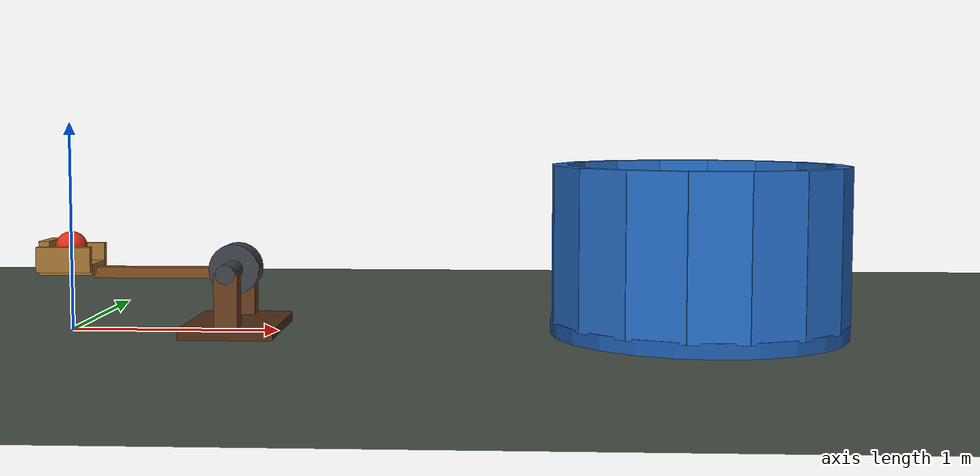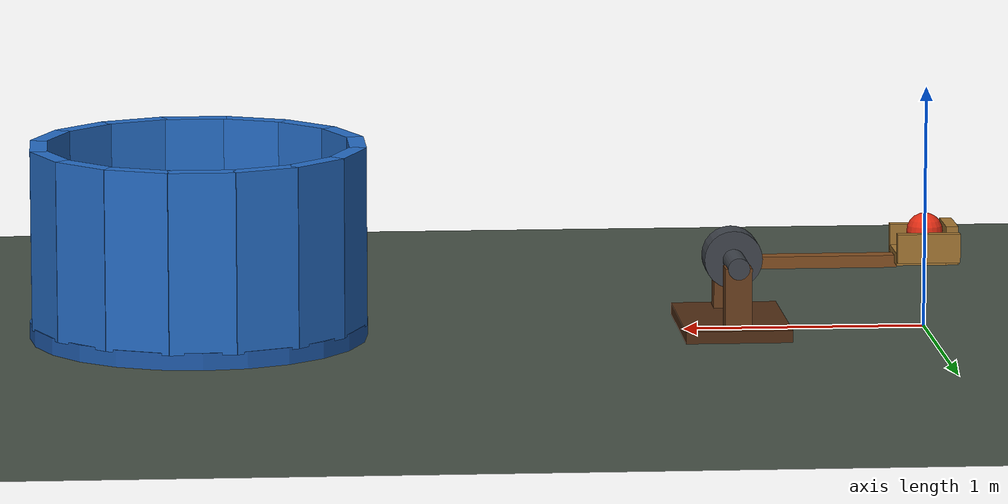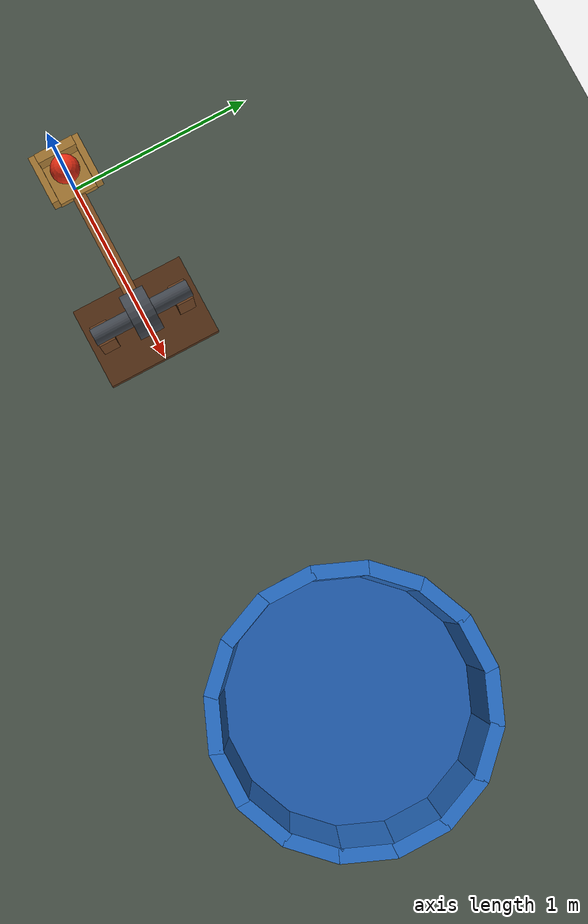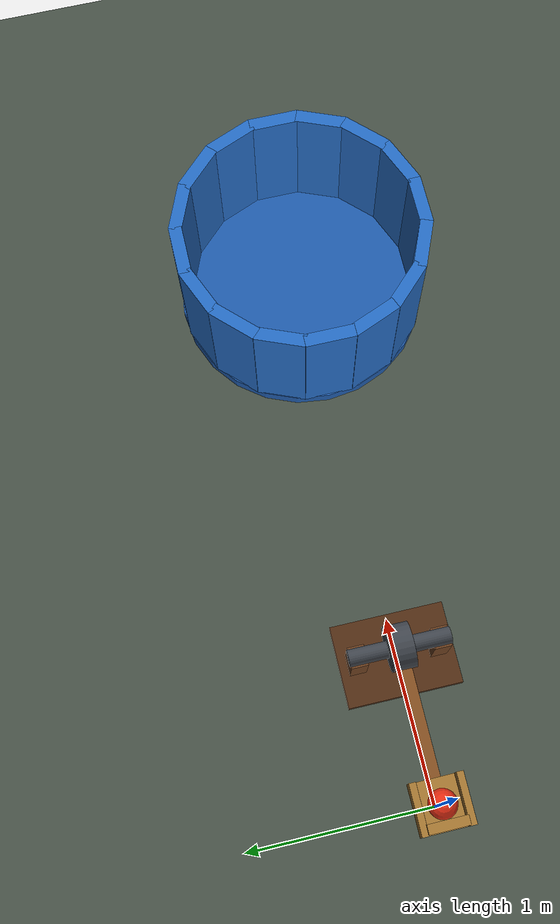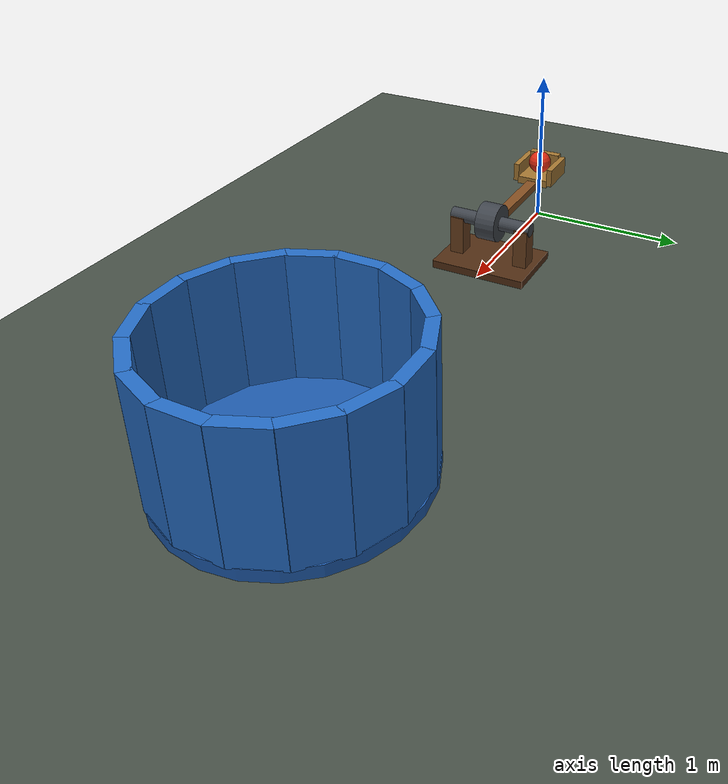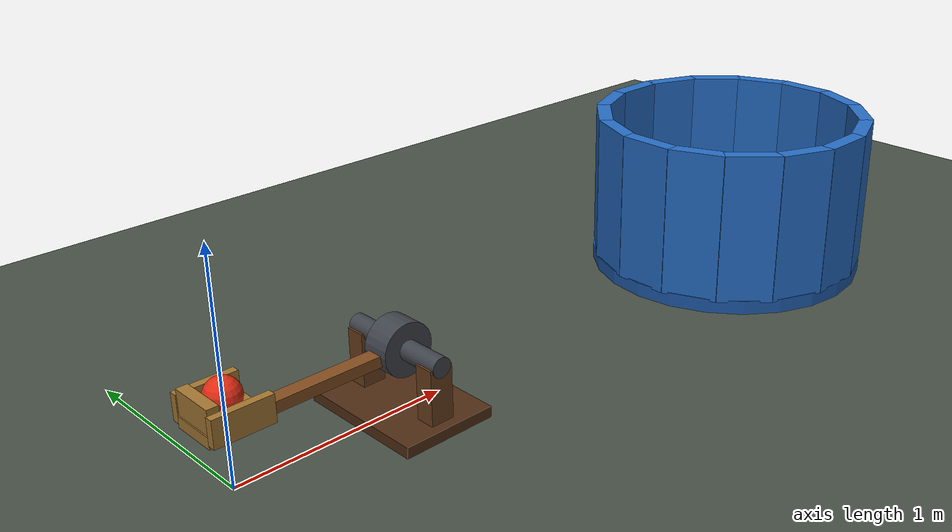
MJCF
<mujoco model="catapult_into_bucket">
  <compiler angle="degree" autolimits="true"/>
  <option timestep="0.002" gravity="0 0 -9.81" integrator="implicitfast" iterations="100" cone="elliptic"/>
  <visual>
    <global azimuth="135" elevation="-20"/>
    <headlight ambient="0.35 0.35 0.35" diffuse="0.7 0.7 0.7"/>
  </visual>

  <worldbody>
    <light name="overhead" pos="1.5 -2 5" dir="0 0 -1"/>
    <camera name="overview" pos="5 -7 4" xyaxes="0.894 0.447 0 -0.182 0.365 0.913"/>
    <geom name="floor" type="plane" size="8 6 0.1" rgba="0.28 0.32 0.28 1" friction="0.9 0.02 0.01"/>

    <body name="catapult_base" pos="0.8 0 0">
      <geom name="catapult_foot" type="box" pos="0 0 0.025" size="0.22 0.31 0.025" rgba="0.32 0.18 0.08 1"/>
      <geom name="catapult_support_left" type="box" pos="0 0.22 0.15" size="0.055 0.045 0.15" rgba="0.42 0.25 0.12 1"/>
      <geom name="catapult_support_right" type="box" pos="0 -0.22 0.15" size="0.055 0.045 0.15" rgba="0.42 0.25 0.12 1"/>
      <geom name="catapult_axle" type="cylinder" pos="0 0 0.3" euler="90 0 0" size="0.045 0.27" rgba="0.25 0.27 0.30 1"/>
    </body>

    <body name="catapult_arm" pos="0.8 0 0.3">
      <inertial pos="0 0 0" mass="1" diaginertia="0.12 0.12 0.12"/>
      <joint name="catapult_hinge" type="hinge" axis="0 1 0" range="0 45" damping="0.02" frictionloss="0.002" solreflimit="0.004 1" solimplimit="0.99 0.99 0.001"/>
      <geom name="catapult_hub" type="cylinder" euler="90 0 0" size="0.12 0.065" mass="0" rgba="0.25 0.27 0.30 1"/>
      <geom name="catapult_beam" type="box" pos="-0.34 0 -0.02" size="0.34 0.035 0.025" mass="0" rgba="0.52 0.31 0.13 1"/>
      <geom name="catapult_pan" type="box" pos="-0.8 0 0" size="0.13 0.105 0.025" mass="0" priority="1" friction="0.04 0.001 0.0001" solref="0.004 1" rgba="0.65 0.47 0.20 1"/>
      <geom name="catapult_backstop" type="box" pos="-0.9 0 0.055" size="0.025 0.105 0.08" mass="0" priority="1" friction="0.04 0.001 0.0001" solref="0.004 1" rgba="0.65 0.47 0.20 1"/>
      <geom name="catapult_pan_left" type="box" pos="-0.8 0.12 0.05" size="0.13 0.018 0.06" mass="0" priority="1" friction="0.04 0.001 0.0001" solref="0.004 1" rgba="0.65 0.47 0.20 1"/>
      <geom name="catapult_pan_right" type="box" pos="-0.8 -0.12 0.05" size="0.13 0.018 0.06" mass="0" priority="1" friction="0.04 0.001 0.0001" solref="0.004 1" rgba="0.65 0.47 0.20 1"/>
    </body>

    <body name="ball" pos="0 0 0.4">
      <freejoint name="ball_free"/>
      <geom name="ball" type="sphere" size="0.075" mass="0.12" friction="0.6 0.01 0.01" solref="0.006 1" solimp="0.95 0.99 0.001" rgba="0.9 0.18 0.08 1"/>
    </body>

    <body name="bucket" pos="3 0 0.4">
      <geom name="bucket_bottom" type="cylinder" pos="0 0 -0.365" size="0.695 0.035" friction="0.9 0.02 0.015" solref="0.006 1" rgba="0.12 0.36 0.68 1"/>
      <geom name="bucket_wall_00" type="box" pos="0.65 0 0.03" euler="0 0 0" size="0.035 0.135 0.37" friction="0.9 0.02 0.015" solref="0.006 1" rgba="0.15 0.43 0.78 1"/>
      <geom name="bucket_wall_01" type="box" pos="0.600522 0.248744 0.03" euler="0 0 22.5" size="0.035 0.135 0.37" friction="0.9 0.02 0.015" solref="0.006 1" rgba="0.15 0.43 0.78 1"/>
      <geom name="bucket_wall_02" type="box" pos="0.459619 0.459619 0.03" euler="0 0 45" size="0.035 0.135 0.37" friction="0.9 0.02 0.015" solref="0.006 1" rgba="0.15 0.43 0.78 1"/>
      <geom name="bucket_wall_03" type="box" pos="0.248744 0.600522 0.03" euler="0 0 67.5" size="0.035 0.135 0.37" friction="0.9 0.02 0.015" solref="0.006 1" rgba="0.15 0.43 0.78 1"/>
      <geom name="bucket_wall_04" type="box" pos="0 0.65 0.03" euler="0 0 90" size="0.035 0.135 0.37" friction="0.9 0.02 0.015" solref="0.006 1" rgba="0.15 0.43 0.78 1"/>
      <geom name="bucket_wall_05" type="box" pos="-0.248744 0.600522 0.03" euler="0 0 112.5" size="0.035 0.135 0.37" friction="0.9 0.02 0.015" solref="0.006 1" rgba="0.15 0.43 0.78 1"/>
      <geom name="bucket_wall_06" type="box" pos="-0.459619 0.459619 0.03" euler="0 0 135" size="0.035 0.135 0.37" friction="0.9 0.02 0.015" solref="0.006 1" rgba="0.15 0.43 0.78 1"/>
      <geom name="bucket_wall_07" type="box" pos="-0.600522 0.248744 0.03" euler="0 0 157.5" size="0.035 0.135 0.37" friction="0.9 0.02 0.015" solref="0.006 1" rgba="0.15 0.43 0.78 1"/>
      <geom name="bucket_wall_08" type="box" pos="-0.65 0 0.03" euler="0 0 180" size="0.035 0.135 0.37" friction="0.9 0.02 0.015" solref="0.006 1" rgba="0.15 0.43 0.78 1"/>
      <geom name="bucket_wall_09" type="box" pos="-0.600522 -0.248744 0.03" euler="0 0 202.5" size="0.035 0.135 0.37" friction="0.9 0.02 0.015" solref="0.006 1" rgba="0.15 0.43 0.78 1"/>
      <geom name="bucket_wall_10" type="box" pos="-0.459619 -0.459619 0.03" euler="0 0 225" size="0.035 0.135 0.37" friction="0.9 0.02 0.015" solref="0.006 1" rgba="0.15 0.43 0.78 1"/>
      <geom name="bucket_wall_11" type="box" pos="-0.248744 -0.600522 0.03" euler="0 0 247.5" size="0.035 0.135 0.37" friction="0.9 0.02 0.015" solref="0.006 1" rgba="0.15 0.43 0.78 1"/>
      <geom name="bucket_wall_12" type="box" pos="0 -0.65 0.03" euler="0 0 270" size="0.035 0.135 0.37" friction="0.9 0.02 0.015" solref="0.006 1" rgba="0.15 0.43 0.78 1"/>
      <geom name="bucket_wall_13" type="box" pos="0.248744 -0.600522 0.03" euler="0 0 292.5" size="0.035 0.135 0.37" friction="0.9 0.02 0.015" solref="0.006 1" rgba="0.15 0.43 0.78 1"/>
      <geom name="bucket_wall_14" type="box" pos="0.459619 -0.459619 0.03" euler="0 0 315" size="0.035 0.135 0.37" friction="0.9 0.02 0.015" solref="0.006 1" rgba="0.15 0.43 0.78 1"/>
      <geom name="bucket_wall_15" type="box" pos="0.600522 -0.248744 0.03" euler="0 0 337.5" size="0.035 0.135 0.37" friction="0.9 0.02 0.015" solref="0.006 1" rgba="0.15 0.43 0.78 1"/>
    </body>
  </worldbody>

  <contact>
    <exclude body1="catapult_base" body2="catapult_arm"/>
  </contact>

  <actuator>
    <motor name="catapult_drive" joint="catapult_hinge" gear="1" ctrllimited="true" ctrlrange="0 8"/>
  </actuator>

  <keyframe>
    <key name="start" qpos="0 0 0 0.4 1 0 0 0" qvel="0 0 0 0 0 0 0" ctrl="5.2"/>
  </keyframe>
</mujoco>
